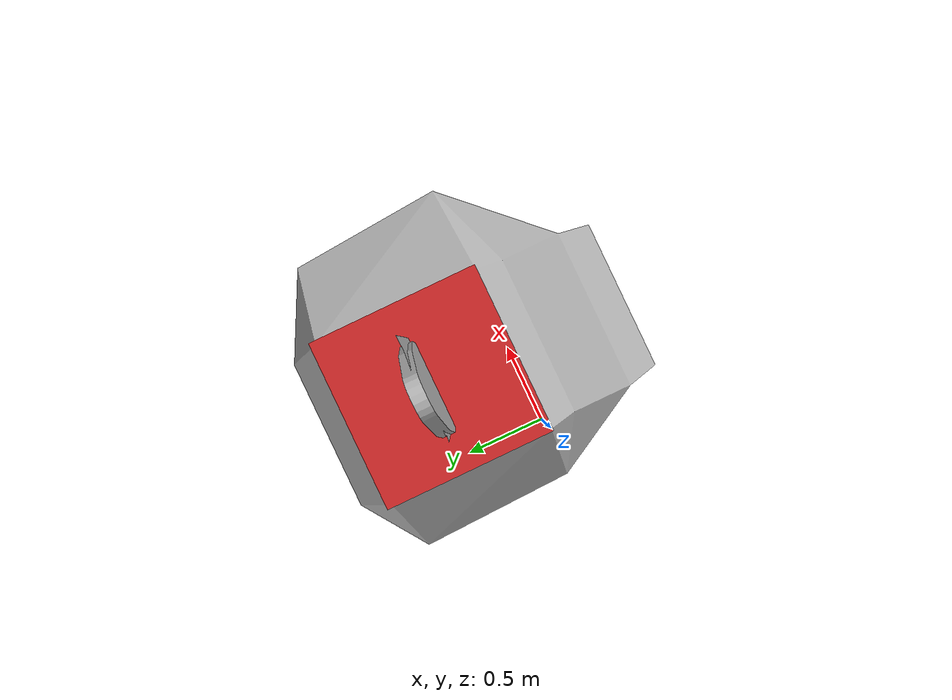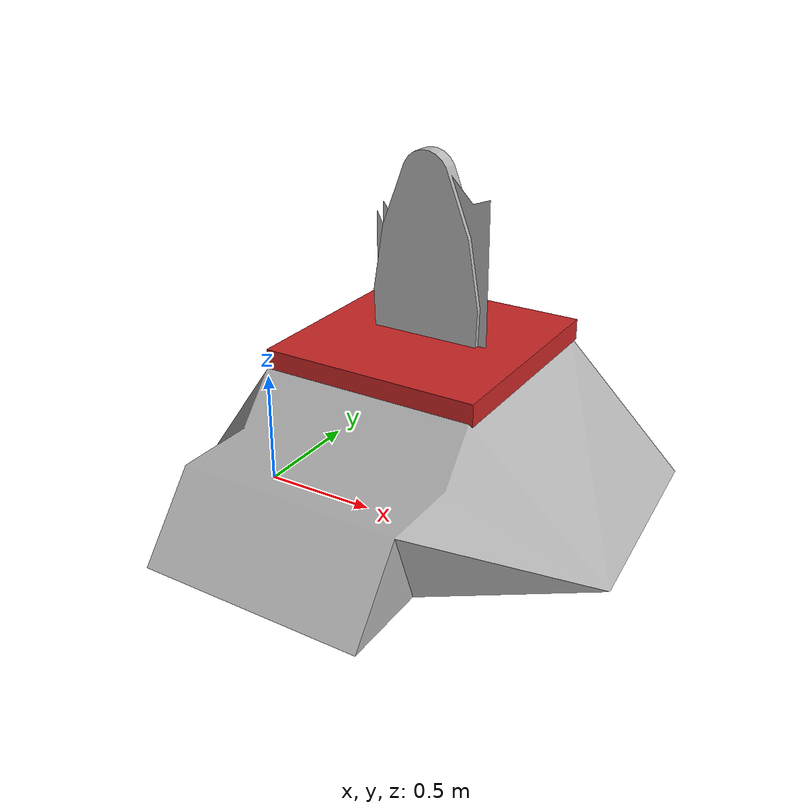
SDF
<?xml version='1.0'?>
<sdf version='1.6'>
  <model name='outdoor_fire_holder'>
    <link name='link_0'>
      <pose frame=''>0 0 0 1.570795 -0 0</pose>
      <inertial>
        <mass>1</mass>
        <inertia>
          <ixx>0.166667</ixx>
          <ixy>0</ixy>
          <ixz>0</ixz>
          <iyy>0.166667</iyy>
          <iyz>0</iyz>
          <izz>0.166667</izz>
        </inertia>
        <pose frame=''>0 0 0 0 -0 0</pose>
      </inertial>
      <gravity>1</gravity>
      <self_collide>0</self_collide>
      <kinematic>0</kinematic>
      <visual name='visual'>
        <pose frame=''>0 0 0 0 -0 0</pose>
        <geometry>
          <mesh>
            <uri>model://outdoor_fire_holder/meshes/outdoor_fire_holder.stl</uri>
            <scale>0.025 0.025 0.025</scale>
          </mesh>
        </geometry>
        <material>
          <lighting>1</lighting>
          <script>
            <uri>model://outdoor_fire_holder/materials/scripts</uri>
            <uri>model://outdoor_fire_holder/materials/textures</uri>
            <name>outdoor_fire_holder</name>
          </script>
          <ambient>0.3 0.3 0.3 1</ambient>
          <diffuse>0.7 0.7 0.7 1</diffuse>
          <specular>0.01 0.01 0.01 1</specular>
          <emissive>0 0 0 1</emissive>
          <shader type='vertex'>
            <normal_map>__default__</normal_map>
          </shader>
        </material>
        <cast_shadows>1</cast_shadows>
        <transparency>0</transparency>
      </visual>
      <collision name='collision'>
        <laser_retro>0</laser_retro>
        <max_contacts>10</max_contacts>
        <pose frame=''>0 0 0.0 0 -0 0</pose>
        <geometry>
          <box>
            <size>0.01 0.01 0.01</size>
          </box>
        </geometry>
        <surface>
          <friction>
            <ode>
              <mu>1</mu>
              <mu2>1</mu2>
              <fdir1>0 0 0</fdir1>
              <slip1>0</slip1>
              <slip2>0</slip2>
            </ode>
            <torsional>
              <coefficient>1</coefficient>
              <patch_radius>0</patch_radius>
              <surface_radius>0</surface_radius>
              <use_patch_radius>1</use_patch_radius>
              <ode>
                <slip>0</slip>
              </ode>
            </torsional>
          </friction>
          <bounce>
            <restitution_coefficient>0</restitution_coefficient>
            <threshold>1e+06</threshold>
          </bounce>
          <contact>
            <collide_without_contact>0</collide_without_contact>
            <collide_without_contact_bitmask>1</collide_without_contact_bitmask>
            <collide_bitmask>1</collide_bitmask>
            <ode>
              <soft_cfm>0</soft_cfm>
              <soft_erp>0.2</soft_erp>
              <kp>1e+13</kp>
              <kd>1</kd>
              <max_vel>0.01</max_vel>
              <min_depth>0</min_depth>
            </ode>
            <bullet>
              <split_impulse>1</split_impulse>
              <split_impulse_penetration_threshold>-0.01</split_impulse_penetration_threshold>
              <soft_cfm>0</soft_cfm>
              <soft_erp>0.2</soft_erp>
              <kp>1e+13</kp>
              <kd>1</kd>
            </bullet>
          </contact>
        </surface>
      </collision>
    </link>
    <link name='link_1'>
      <pose frame=''>0 0 0.5 0 -0 1.570795</pose>
      <inertial>
        <mass>1</mass>
        <inertia>
          <ixx>0.166667</ixx>
          <ixy>0</ixy>
          <ixz>0</ixz>
          <iyy>0.166667</iyy>
          <iyz>0</iyz>
          <izz>0.166667</izz>
        </inertia>
        <pose frame=''>0 0 0 0 -0 0</pose>
      </inertial>
      <gravity>1</gravity>
      <self_collide>0</self_collide>
      <kinematic>0</kinematic>
      <visual name='visual'>
        <pose frame=''>0.5 -0.5 0 0 -0 0</pose>
        <geometry>
          <mesh>
            <uri>model://outdoor_fire_holder/meshes/Fire_Tongue.dae</uri>
            <scale>0.07 0.05 0.05</scale>
          </mesh>
        </geometry>
        <material>
          <lighting>1</lighting>
          <script>
            <uri>model://outdoor_fire_holder/materials/scripts</uri>
            <uri>model://outdoor_fire_holder/materials/textures</uri>
            <name>Fire_Tongue</name>
          </script>

          <shader type='vertex'>
            <normal_map>__default__</normal_map>
          </shader>
        </material>
        <cast_shadows>1</cast_shadows>
        <transparency>0</transparency>
      </visual>
      <collision name='collision'>
        <laser_retro>0</laser_retro>
        <max_contacts>10</max_contacts>
        <pose frame=''>0.5 -0.5 0 0 -0 0</pose>
        <geometry>
          <mesh>
            <uri>model://outdoor_fire_holder/meshes/Fire_Tongue.dae</uri>
            <scale>0.05 0.035 0.033</scale>
          </mesh>
        </geometry>
        <surface>
          <friction>
            <ode>
              <mu>1</mu>
              <mu2>1</mu2>
              <fdir1>0 0 0</fdir1>
              <slip1>0</slip1>
              <slip2>0</slip2>
            </ode>
            <torsional>
              <coefficient>1</coefficient>
              <patch_radius>0</patch_radius>
              <surface_radius>0</surface_radius>
              <use_patch_radius>1</use_patch_radius>
              <ode>
                <slip>0</slip>
              </ode>
            </torsional>
          </friction>
          <bounce>
            <restitution_coefficient>0</restitution_coefficient>
            <threshold>1e+06</threshold>
          </bounce>
          <contact>
            <collide_without_contact>0</collide_without_contact>
            <collide_without_contact_bitmask>1</collide_without_contact_bitmask>
            <collide_bitmask>1</collide_bitmask>
            <ode>
              <soft_cfm>0</soft_cfm>
              <soft_erp>0.2</soft_erp>
              <kp>1e+13</kp>
              <kd>1</kd>
              <max_vel>0.01</max_vel>
              <min_depth>0</min_depth>
            </ode>
            <bullet>
              <split_impulse>1</split_impulse>
              <split_impulse_penetration_threshold>-0.01</split_impulse_penetration_threshold>
              <soft_cfm>0</soft_cfm>
              <soft_erp>0.2</soft_erp>
              <kp>1e+13</kp>
              <kd>1</kd>
            </bullet>
          </contact>
        </surface>
      </collision>
    </link>
    <joint name='link_0_JOINT_0' type='fixed'>
      <parent>link_0</parent>
      <child>link_1</child>
      <pose frame=''>0 0 0 0 -0 0</pose>
      <physics>
        <ode>
          <limit>
            <cfm>0</cfm>
            <erp>0.2</erp>
          </limit>
          <suspension>
            <cfm>0</cfm>
            <erp>0.2</erp>
          </suspension>
        </ode>
      </physics>
    </joint>

    <link name='link_outdoor_fire_plate'>
      <pose frame=''>0.5 0.5 0.58 0 -0 0</pose>
      <inertial>
        <mass>1</mass>
        <inertia>
          <ixx>0.166667</ixx>
          <ixy>0</ixy>
          <ixz>0</ixz>
          <iyy>0.166667</iyy>
          <iyz>0</iyz>
          <izz>0.166667</izz>
        </inertia>
        <pose frame=''>0 0 0 0 -0 0</pose>
      </inertial>
      <gravity>1</gravity>
      <self_collide>0</self_collide>
      <kinematic>0</kinematic>
      <visual name='visual'>
        <pose frame=''>0 0 0 0 -0 0</pose>
        <geometry>
          <box>
            <size>1 1 0.1</size>
          </box>
        </geometry>
        <material>
          <lighting>1</lighting>
          <script>
            <uri>file://media/materials/scripts/gazebo.material</uri>
            <name>Gazebo/Red</name>
          </script>
          <ambient>0.9 0.1 0.1 1</ambient>
          <diffuse>0.7 0.7 0.7 1</diffuse>
          <specular>0.01 0.01 0.01 1</specular>
          <emissive>0 0 0 1</emissive>
          <shader type='vertex'>
            <normal_map>__default__</normal_map>
          </shader>
        </material>
        <cast_shadows>1</cast_shadows>
        <transparency>0</transparency>
      </visual>
      <collision name='collision'>
        <laser_retro>0</laser_retro>
        <max_contacts>10</max_contacts>
        <pose frame=''>0 0 0 0 -0 0</pose>
        <geometry>
          <box>
            <size>1 1 0.1</size>
          </box>
        </geometry>
        <surface>
          <friction>
            <ode>
              <mu>1</mu>
              <mu2>1</mu2>
              <fdir1>0 0 0</fdir1>
              <slip1>0</slip1>
              <slip2>0</slip2>
            </ode>
            <torsional>
              <coefficient>1</coefficient>
              <patch_radius>0</patch_radius>
              <surface_radius>0</surface_radius>
              <use_patch_radius>1</use_patch_radius>
              <ode>
                <slip>0</slip>
              </ode>
            </torsional>
          </friction>
          <bounce>
            <restitution_coefficient>0</restitution_coefficient>
            <threshold>1e+06</threshold>
          </bounce>
          <contact>
            <collide_without_contact>0</collide_without_contact>
            <collide_without_contact_bitmask>1</collide_without_contact_bitmask>
            <collide_bitmask>1</collide_bitmask>
            <ode>
              <soft_cfm>0</soft_cfm>
              <soft_erp>0.2</soft_erp>
              <kp>1e+13</kp>
              <kd>1</kd>
              <max_vel>0.01</max_vel>
              <min_depth>0</min_depth>
            </ode>
            <bullet>
              <split_impulse>1</split_impulse>
              <split_impulse_penetration_threshold>-0.01</split_impulse_penetration_threshold>
              <soft_cfm>0</soft_cfm>
              <soft_erp>0.2</soft_erp>
              <kp>1e+13</kp>
              <kd>1</kd>
            </bullet>
          </contact>
        </surface>
      </collision>
    </link>

        <joint name='link_0_JOINT_2' type='fixed'>
      <parent>link_0</parent>
      <child>link_outdoor_fire_plate</child>
      <pose frame=''>0 0 0 0 -0 0</pose>
      <physics>
        <ode>
          <limit>
            <cfm>0</cfm>
            <erp>0.2</erp>
          </limit>
          <suspension>
            <cfm>0</cfm>
            <erp>0.2</erp>
          </suspension>
        </ode>
      </physics>
    </joint>

    <static>1</static>
    <allow_auto_disable>1</allow_auto_disable>
  </model>
</sdf>
